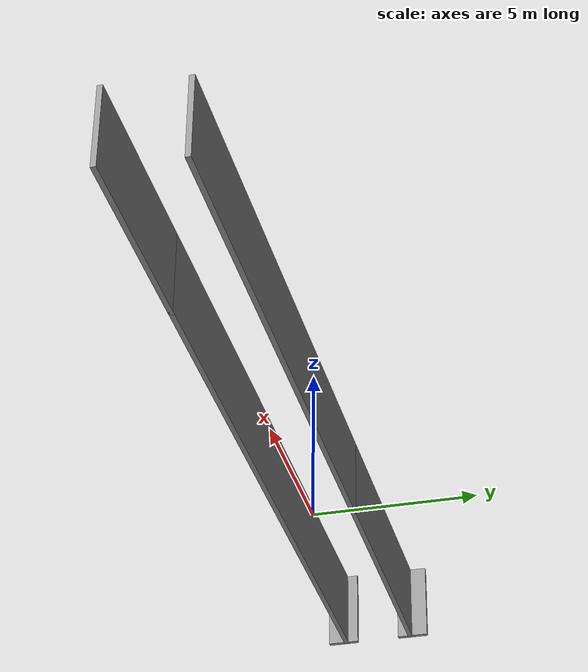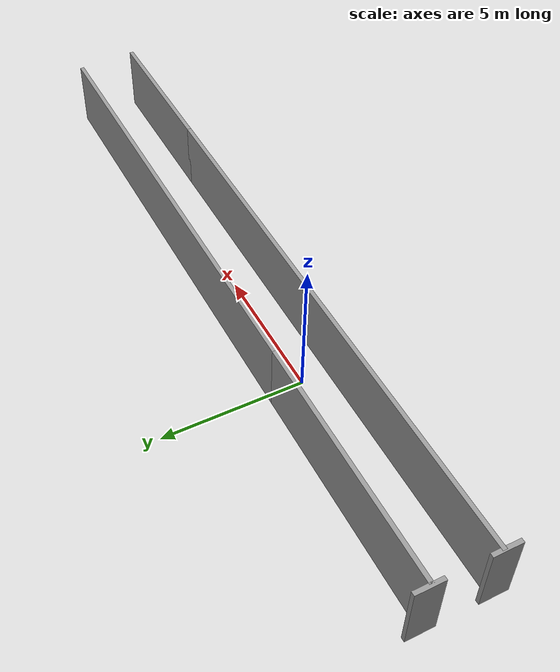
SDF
<?xml version='1.0'?>
<sdf version='1.6'>
  <model name='Long_corridor'>
    <pose frame=''>3.97681 0.085743 0 0 -0 0</pose>
    <link name='Wall_11'>
      <collision name='Wall_11_Collision'>
        <geometry>
          <box>
            <size>17 0.15 2.5</size>
          </box>
        </geometry>
        <pose frame=''>0 0 1.25 0 -0 0</pose>
      </collision>
      <visual name='Wall_11_Visual'>
        <pose frame=''>0 0 1.25 0 -0 0</pose>
        <geometry>
          <box>
            <size>17 0.15 2.5</size>
          </box>
        </geometry>
        <material>
          <script>
            <uri>file://media/materials/scripts/gazebo.material</uri>
            <name>Gazebo/Grey</name>
          </script>
          <ambient>1 1 1 1</ambient>
        </material>
      </visual>
      <pose frame=''>4.25799 1.11034 0 0 -0 0</pose>
    </link>
    <link name='Wall_15'>
      <collision name='Wall_15_Collision'>
        <geometry>
          <box>
            <size>6 0.15 2.5</size>
          </box>
        </geometry>
        <pose frame=''>0 0 1.25 0 -0 0</pose>
      </collision>
      <visual name='Wall_15_Visual'>
        <pose frame=''>0 0 1.25 0 -0 0</pose>
        <geometry>
          <box>
            <size>6 0.15 2.5</size>
          </box>
        </geometry>
        <material>
          <script>
            <uri>file://media/materials/scripts/gazebo.material</uri>
            <name>Gazebo/Grey</name>
          </script>
          <ambient>1 1 1 1</ambient>
        </material>
      </visual>
      <pose frame=''>9.925 -1.11034 0 0 -0 0</pose>
    </link>
    <link name='Wall_5'>
      <collision name='Wall_5_Collision'>
        <geometry>
          <box>
            <size>8.75528 0.15 2.5</size>
          </box>
        </geometry>
        <pose frame=''>0 0 1.25 0 -0 0</pose>
      </collision>
      <visual name='Wall_5_Visual'>
        <pose frame=''>0 0 1.25 0 -0 0</pose>
        <geometry>
          <box>
            <size>8.75528 0.15 2.5</size>
          </box>
        </geometry>
        <material>
          <script>
            <uri>file://media/materials/scripts/gazebo.material</uri>
            <name>Gazebo/Grey</name>
          </script>
          <ambient>1 1 1 1</ambient>
        </material>
      </visual>
      <pose frame=''>-8.50024 1.11034 0 0 -0 3.14159</pose>
    </link>
    <link name='Wall_9'>
      <collision name='Wall_9_Collision'>
        <geometry>
          <box>
            <size>20 0.15 2.5</size>
          </box>
        </geometry>
        <pose frame=''>0 0 1.25 0 -0 0</pose>
      </collision>
      <visual name='Wall_9_Visual'>
        <pose frame=''>0 0 1.25 0 -0 0</pose>
        <geometry>
          <box>
            <size>20 0.15 2.5</size>
          </box>
        </geometry>
        <material>
          <script>
            <uri>file://media/materials/scripts/gazebo.material</uri>
            <name>Gazebo/Grey</name>
          </script>
          <ambient>1 1 1 1</ambient>
        </material>
      </visual>
      <pose frame=''>-2.925 -1.11034 0 0 -0 0</pose>
    </link>
    <link name='Wall_42'>
      <collision name='Wall_42_Collision'>
        <geometry>
          <box>
            <size>1 0.15 2.5</size>
          </box>
        </geometry>
        <pose frame=''>0 0 1.25 0 -0 0</pose>
      </collision>
      <visual name='Wall_42_Visual'>
        <pose frame=''>0 0 1.25 0 -0 0</pose>
        <geometry>
          <box>
            <size>1 0.15 2.5</size>
          </box>
        </geometry>
        <material>
          <script>
            <uri>file://media/materials/scripts/gazebo.material</uri>
            <name>Gazebo/Grey</name>
          </script>
          <ambient>1 1 1 1</ambient>
        </material>
      </visual>
      <pose frame=''>-12.9 -1.2 0 0 -0 1.5708</pose>
    </link>
    <link name='Wall_43'>
      <collision name='Wall_43_Collision'>
        <geometry>
          <box>
            <size>1 0.15 2.5</size>
          </box>
        </geometry>
        <pose frame=''>0 0 1.25 0 -0 0</pose>
      </collision>
      <visual name='Wall_43_Visual'>
        <pose frame=''>0 0 1.25 0 -0 0</pose>
        <geometry>
          <box>
            <size>1 0.15 2.5</size>
          </box>
        </geometry>
        <material>
          <script>
            <uri>file://media/materials/scripts/gazebo.material</uri>
            <name>Gazebo/Grey</name>
          </script>
          <ambient>1 1 1 1</ambient>
        </material>
      </visual>
      <pose frame=''>-12.9 1.2 0 0 -0 1.5708</pose>
    </link>
    <static>1</static>
  </model>
</sdf>
